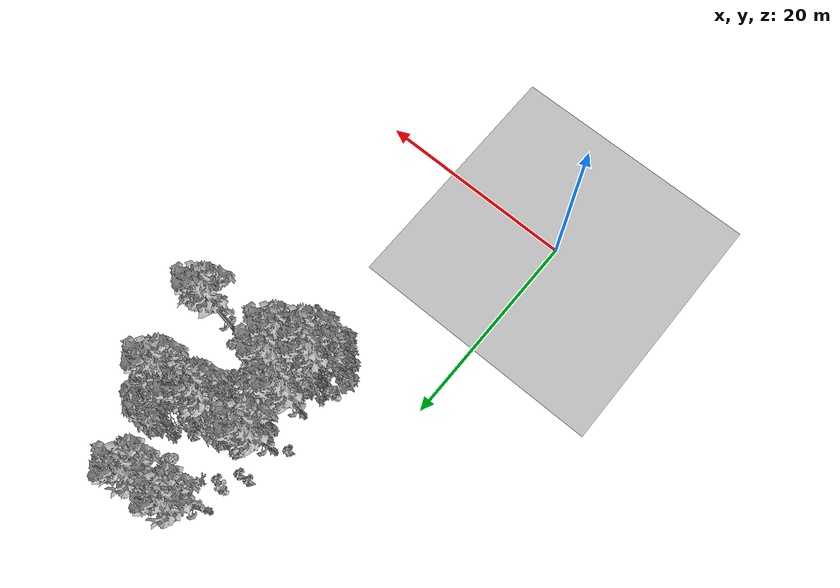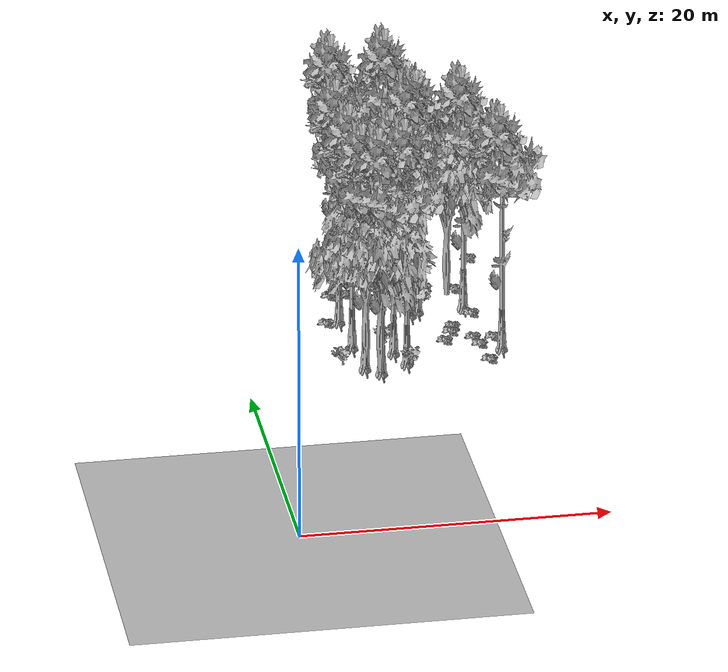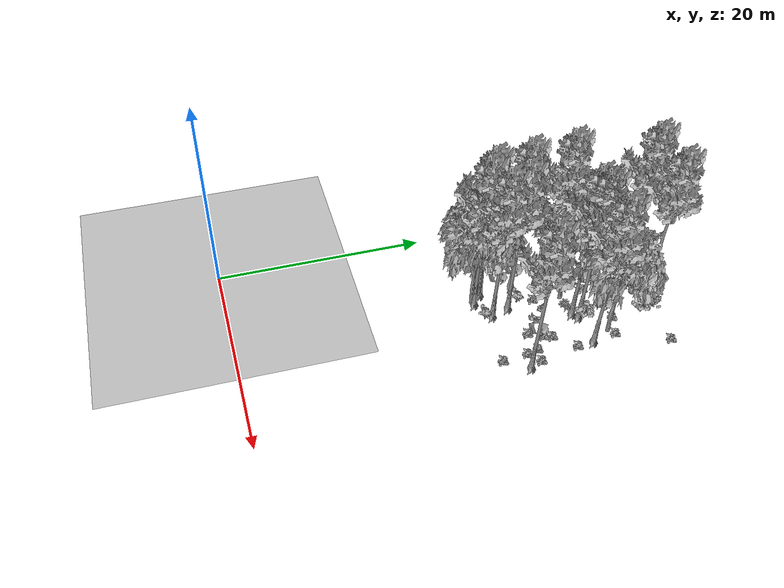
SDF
<sdf version="1.7">
 <world name="default">
  <model name="ground_plane">
   <static>1</static>
   <link name="link">
    <collision name="collision">
     <pose>-50 0 0 0 -0 0</pose>
     <geometry><plane><normal>0 0 1</normal><size>80 80</size></plane></geometry>
     <surface><contact><ode><min_depth>0.01</min_depth><max_vel>0</max_vel></ode></contact></surface>
    </collision>
    <visual name="grass">
     <cast_shadows>0</cast_shadows>
     <geometry>
      <mesh>
       <scale>0.46714285714285714 0.46714285714285714 0.1</scale>
       <uri>file://grass_plane/meshes/grass_plane.dae</uri>
      </mesh>
     </geometry>
    </visual>
   </link>
  </model>
  <model name="Tree 33">
   <static>1</static>
   <pose>15.401108456018747 33.57319850584669 0 1.57079 -0 0</pose>
   <link name="link">
    <collision name="collision">
     <geometry><mesh><scale>3.5 5 3.5</scale><uri>model://tree_2/meshes/tree_2.obj</uri></mesh></geometry>
    </collision>
    <visual name="visual">
     <geometry><mesh><scale>3.5 5 3.5</scale><uri>model://tree_2/meshes/tree_2.obj</uri></mesh></geometry>
    </visual>
   </link>
  </model>
  <model name="Tree 93">
   <static>1</static>
   <pose>12.336655040405326 38.84349957890545 0 1.57079 -0 0</pose>
   <link name="link">
    <collision name="collision">
     <geometry><mesh><scale>3.5 5 3.5</scale><uri>model://tree_9/meshes/tree_9.obj</uri></mesh></geometry>
    </collision>
    <visual name="visual">
     <geometry><mesh><scale>3.5 5 3.5</scale><uri>model://tree_9/meshes/tree_9.obj</uri></mesh></geometry>
    </visual>
   </link>
  </model>
  <model name="Tree 109">
   <static>1</static>
   <pose>12.619514855196059 31.317421147298717 0 1.57079 -0 0</pose>
   <link name="link">
    <collision name="collision">
     <geometry><mesh><scale>3.5 5 3.5</scale><uri>model://tree_9/meshes/tree_9.obj</uri></mesh></geometry>
    </collision>
    <visual name="visual">
     <geometry><mesh><scale>3.5 5 3.5</scale><uri>model://tree_9/meshes/tree_9.obj</uri></mesh></geometry>
    </visual>
   </link>
  </model>
  <model name="Tree 112">
   <static>1</static>
   <pose>8.592952753554712 38.517218371462405 0 1.57079 -0 0</pose>
   <link name="link">
    <collision name="collision">
     <geometry><mesh><scale>3.5 5 3.5</scale><uri>model://tree_9/meshes/tree_9.obj</uri></mesh></geometry>
    </collision>
    <visual name="visual">
     <geometry><mesh><scale>3.5 5 3.5</scale><uri>model://tree_9/meshes/tree_9.obj</uri></mesh></geometry>
    </visual>
   </link>
  </model>
  <model name="Tree 122">
   <static>1</static>
   <pose>8.21562229985566 23.649697541144135 0 1.57079 -0 0</pose>
   <link name="link">
    <collision name="collision">
     <geometry><mesh><scale>3.5 5 3.5</scale><uri>model://tree_2/meshes/tree_2.obj</uri></mesh></geometry>
    </collision>
    <visual name="visual">
     <geometry><mesh><scale>3.5 5 3.5</scale><uri>model://tree_2/meshes/tree_2.obj</uri></mesh></geometry>
    </visual>
   </link>
  </model>
  <model name="Tree 153">
   <static>1</static>
   <pose>7.913516245177817 27.03640355824217 0 1.57079 -0 0</pose>
   <link name="link">
    <collision name="collision">
     <geometry><mesh><scale>3.5 5 3.5</scale><uri>model://tree_9/meshes/tree_9.obj</uri></mesh></geometry>
    </collision>
    <visual name="visual">
     <geometry><mesh><scale>3.5 5 3.5</scale><uri>model://tree_9/meshes/tree_9.obj</uri></mesh></geometry>
    </visual>
   </link>
  </model>
  <model name="Tree 160">
   <static>1</static>
   <pose>8.229672501548713 23.743751965756196 0 1.57079 -0 0</pose>
   <link name="link">
    <collision name="collision">
     <geometry><mesh><scale>3.5 5 3.5</scale><uri>model://tree_9/meshes/tree_9.obj</uri></mesh></geometry>
    </collision>
    <visual name="visual">
     <geometry><mesh><scale>3.5 5 3.5</scale><uri>model://tree_9/meshes/tree_9.obj</uri></mesh></geometry>
    </visual>
   </link>
  </model>
  <model name="Tree 188">
   <static>1</static>
   <pose>9.19671573210696 22.879345841000017 0 1.57079 -0 0</pose>
   <link name="link">
    <collision name="collision">
     <geometry><mesh><scale>3.5 5 3.5</scale><uri>model://tree_9/meshes/tree_9.obj</uri></mesh></geometry>
    </collision>
    <visual name="visual">
     <geometry><mesh><scale>3.5 5 3.5</scale><uri>model://tree_9/meshes/tree_9.obj</uri></mesh></geometry>
    </visual>
   </link>
  </model>
  <model name="Tree 191">
   <static>1</static>
   <pose>13.169127109072804 31.75562385294198 0 1.57079 -0 0</pose>
   <link name="link">
    <collision name="collision">
     <geometry><mesh><scale>3.5 5 3.5</scale><uri>model://tree_9/meshes/tree_9.obj</uri></mesh></geometry>
    </collision>
    <visual name="visual">
     <geometry><mesh><scale>3.5 5 3.5</scale><uri>model://tree_9/meshes/tree_9.obj</uri></mesh></geometry>
    </visual>
   </link>
  </model>
  <model name="Tree 273">
   <static>1</static>
   <pose>16.303444566797175 31.877068542320444 0 1.57079 -0 0</pose>
   <link name="link">
    <collision name="collision">
     <geometry><mesh><scale>3.5 5 3.5</scale><uri>model://tree_9/meshes/tree_9.obj</uri></mesh></geometry>
    </collision>
    <visual name="visual">
     <geometry><mesh><scale>3.5 5 3.5</scale><uri>model://tree_9/meshes/tree_9.obj</uri></mesh></geometry>
    </visual>
   </link>
  </model>
  <model name="Tree 311">
   <static>1</static>
   <pose>11.082406482044163 24.023537155399808 0 1.57079 -0 0</pose>
   <link name="link">
    <collision name="collision">
     <geometry><mesh><scale>3.5 5 3.5</scale><uri>model://tree_9/meshes/tree_9.obj</uri></mesh></geometry>
    </collision>
    <visual name="visual">
     <geometry><mesh><scale>3.5 5 3.5</scale><uri>model://tree_9/meshes/tree_9.obj</uri></mesh></geometry>
    </visual>
   </link>
  </model>
  <model name="Tree 364">
   <static>1</static>
   <pose>10.493133607995219 25.760082615923054 0 1.57079 -0 0</pose>
   <link name="link">
    <collision name="collision">
     <geometry><mesh><scale>3.5 5 3.5</scale><uri>model://tree_9/meshes/tree_9.obj</uri></mesh></geometry>
    </collision>
    <visual name="visual">
     <geometry><mesh><scale>3.5 5 3.5</scale><uri>model://tree_9/meshes/tree_9.obj</uri></mesh></geometry>
    </visual>
   </link>
  </model>
  <model name="Tree 398">
   <static>1</static>
   <pose>9.00111854460561 22.625104764252306 0 1.57079 -0 0</pose>
   <link name="link">
    <collision name="collision">
     <geometry><mesh><scale>3.5 5 3.5</scale><uri>model://tree_2/meshes/tree_2.obj</uri></mesh></geometry>
    </collision>
    <visual name="visual">
     <geometry><mesh><scale>3.5 5 3.5</scale><uri>model://tree_2/meshes/tree_2.obj</uri></mesh></geometry>
    </visual>
   </link>
  </model>
  <model name="Tree 407">
   <static>1</static>
   <pose>7.713448466924511 31.091820525890284 0 1.57079 -0 0</pose>
   <link name="link">
    <collision name="collision">
     <geometry><mesh><scale>3.5 5 3.5</scale><uri>model://tree_9/meshes/tree_9.obj</uri></mesh></geometry>
    </collision>
    <visual name="visual">
     <geometry><mesh><scale>3.5 5 3.5</scale><uri>model://tree_9/meshes/tree_9.obj</uri></mesh></geometry>
    </visual>
   </link>
  </model>
  <model name="Tree 517">
   <static>1</static>
   <pose>17.698250649053477 25.274732946321762 0 1.57079 -0 0</pose>
   <link name="link">
    <collision name="collision">
     <geometry><mesh><scale>3.5 5 3.5</scale><uri>model://tree_9/meshes/tree_9.obj</uri></mesh></geometry>
    </collision>
    <visual name="visual">
     <geometry><mesh><scale>3.5 5 3.5</scale><uri>model://tree_9/meshes/tree_9.obj</uri></mesh></geometry>
    </visual>
   </link>
  </model>
  <model name="Tree 529">
   <static>1</static>
   <pose>10.519828095997923 30.924006442572306 0 1.57079 -0 0</pose>
   <link name="link">
    <collision name="collision">
     <geometry><mesh><scale>3.5 5 3.5</scale><uri>model://tree_2/meshes/tree_2.obj</uri></mesh></geometry>
    </collision>
    <visual name="visual">
     <geometry><mesh><scale>3.5 5 3.5</scale><uri>model://tree_2/meshes/tree_2.obj</uri></mesh></geometry>
    </visual>
   </link>
  </model>
  <model name="Bush 3">
   <static>1</static>
   <pose>16.249632957107032 25.42596182473386 0 1.57079 -0 0</pose>
   <link name="link">
    <collision name="collision">
     <geometry><mesh><scale>2 2 2</scale><uri>model://bush_2/meshes/bush_2.obj</uri></mesh></geometry>
     <surface><contact><collide_without_contact>false</collide_without_contact></contact></surface>
    </collision>
    <visual name="visual">
     <geometry><mesh><scale>2 2 2</scale><uri>model://bush_2/meshes/bush_2.obj</uri></mesh></geometry>
    </visual>
   </link>
  </model>
  <model name="Bush 34">
   <static>1</static>
   <pose>10.201879607091279 39.424126787518816 0 1.57079 -0 0</pose>
   <link name="link">
    <collision name="collision">
     <geometry><mesh><scale>2 2 2</scale><uri>model://bush_2/meshes/bush_2.obj</uri></mesh></geometry>
     <surface><contact><collide_without_contact>false</collide_without_contact></contact></surface>
    </collision>
    <visual name="visual">
     <geometry><mesh><scale>2 2 2</scale><uri>model://bush_2/meshes/bush_2.obj</uri></mesh></geometry>
    </visual>
   </link>
  </model>
  <model name="Bush 59">
   <static>1</static>
   <pose>15.989112713481553 34.099665364391996 0 1.57079 -0 0</pose>
   <link name="link">
    <collision name="collision">
     <geometry><mesh><scale>2 2 2</scale><uri>model://bush_2/meshes/bush_2.obj</uri></mesh></geometry>
     <surface><contact><collide_without_contact>false</collide_without_contact></contact></surface>
    </collision>
    <visual name="visual">
     <geometry><mesh><scale>2 2 2</scale><uri>model://bush_2/meshes/bush_2.obj</uri></mesh></geometry>
    </visual>
   </link>
  </model>
  <model name="Bush 90">
   <static>1</static>
   <pose>6.669853257139991 30.215779195528654 0 1.57079 -0 0</pose>
   <link name="link">
    <collision name="collision">
     <geometry><mesh><scale>2 2 2</scale><uri>model://bush_2/meshes/bush_2.obj</uri></mesh></geometry>
     <surface><contact><collide_without_contact>false</collide_without_contact></contact></surface>
    </collision>
    <visual name="visual">
     <geometry><mesh><scale>2 2 2</scale><uri>model://bush_2/meshes/bush_2.obj</uri></mesh></geometry>
    </visual>
   </link>
  </model>
  <model name="Bush 132">
   <static>1</static>
   <pose>13.7281347563978 38.9901357946936 0 1.57079 -0 0</pose>
   <link name="link">
    <collision name="collision">
     <geometry><mesh><scale>2 2 2</scale><uri>model://bush_4/meshes/bush_4.obj</uri></mesh></geometry>
     <surface><contact><collide_without_contact>false</collide_without_contact></contact></surface>
    </collision>
    <visual name="visual">
     <geometry><mesh><scale>2 2 2</scale><uri>model://bush_4/meshes/bush_4.obj</uri></mesh></geometry>
    </visual>
   </link>
  </model>
  <model name="Bush 149">
   <static>1</static>
   <pose>13.923100396724493 37.49488139479992 0 1.57079 -0 0</pose>
   <link name="link">
    <collision name="collision">
     <geometry><mesh><scale>2 2 2</scale><uri>model://bush_1/meshes/bush_1.obj</uri></mesh></geometry>
     <surface><contact><collide_without_contact>false</collide_without_contact></contact></surface>
    </collision>
    <visual name="visual">
     <geometry><mesh><scale>2 2 2</scale><uri>model://bush_1/meshes/bush_1.obj</uri></mesh></geometry>
    </visual>
   </link>
  </model>
  <model name="Bush 166">
   <static>1</static>
   <pose>12.446395963119919 30.705193880653127 0 1.57079 -0 0</pose>
   <link name="link">
    <collision name="collision">
     <geometry><mesh><scale>2 2 2</scale><uri>model://bush_5/meshes/bush_5.obj</uri></mesh></geometry>
     <surface><contact><collide_without_contact>false</collide_without_contact></contact></surface>
    </collision>
    <visual name="visual">
     <geometry><mesh><scale>2 2 2</scale><uri>model://bush_5/meshes/bush_5.obj</uri></mesh></geometry>
    </visual>
   </link>
  </model>
  <model name="Bush 172">
   <static>1</static>
   <pose>6.778485023706288 23.98927922673616 0 1.57079 -0 0</pose>
   <link name="link">
    <collision name="collision">
     <geometry><mesh><scale>2 2 2</scale><uri>model://bush_0/meshes/bush_0.obj</uri></mesh></geometry>
     <surface><contact><collide_without_contact>false</collide_without_contact></contact></surface>
    </collision>
    <visual name="visual">
     <geometry><mesh><scale>2 2 2</scale><uri>model://bush_0/meshes/bush_0.obj</uri></mesh></geometry>
    </visual>
   </link>
  </model>
  <model name="Bush 243">
   <static>1</static>
   <pose>10.143733107484614 33.44354920803602 0 1.57079 -0 0</pose>
   <link name="link">
    <collision name="collision">
     <geometry><mesh><scale>2 2 2</scale><uri>model://bush_2/meshes/bush_2.obj</uri></mesh></geometry>
     <surface><contact><collide_without_contact>false</collide_without_contact></contact></surface>
    </collision>
    <visual name="visual">
     <geometry><mesh><scale>2 2 2</scale><uri>model://bush_2/meshes/bush_2.obj</uri></mesh></geometry>
    </visual>
   </link>
  </model>
  <model name="Bush 261">
   <static>1</static>
   <pose>16.537888745394923 30.190059494899316 0 1.57079 -0 0</pose>
   <link name="link">
    <collision name="collision">
     <geometry><mesh><scale>2 2 2</scale><uri>model://bush_2/meshes/bush_2.obj</uri></mesh></geometry>
     <surface><contact><collide_without_contact>false</collide_without_contact></contact></surface>
    </collision>
    <visual name="visual">
     <geometry><mesh><scale>2 2 2</scale><uri>model://bush_2/meshes/bush_2.obj</uri></mesh></geometry>
    </visual>
   </link>
  </model>
  <model name="Bush 266">
   <static>1</static>
   <pose>11.789353700145973 37.7337492899417 0 1.57079 -0 0</pose>
   <link name="link">
    <collision name="collision">
     <geometry><mesh><scale>2 2 2</scale><uri>model://bush_4/meshes/bush_4.obj</uri></mesh></geometry>
     <surface><contact><collide_without_contact>false</collide_without_contact></contact></surface>
    </collision>
    <visual name="visual">
     <geometry><mesh><scale>2 2 2</scale><uri>model://bush_4/meshes/bush_4.obj</uri></mesh></geometry>
    </visual>
   </link>
  </model>
  <model name="Bush 279">
   <static>1</static>
   <pose>10.61329698757229 37.1129001181541 0 1.57079 -0 0</pose>
   <link name="link">
    <collision name="collision">
     <geometry><mesh><scale>2 2 2</scale><uri>model://bush_5/meshes/bush_5.obj</uri></mesh></geometry>
     <surface><contact><collide_without_contact>false</collide_without_contact></contact></surface>
    </collision>
    <visual name="visual">
     <geometry><mesh><scale>2 2 2</scale><uri>model://bush_5/meshes/bush_5.obj</uri></mesh></geometry>
    </visual>
   </link>
  </model>
  <model name="Bush 280">
   <static>1</static>
   <pose>9.752483533402888 36.08796408233158 0 1.57079 -0 0</pose>
   <link name="link">
    <collision name="collision">
     <geometry><mesh><scale>2 2 2</scale><uri>model://bush_2/meshes/bush_2.obj</uri></mesh></geometry>
     <surface><contact><collide_without_contact>false</collide_without_contact></contact></surface>
    </collision>
    <visual name="visual">
     <geometry><mesh><scale>2 2 2</scale><uri>model://bush_2/meshes/bush_2.obj</uri></mesh></geometry>
    </visual>
   </link>
  </model>
  <model name="Bush 281">
   <static>1</static>
   <pose>14.928388312196532 28.3846783005434 0 1.57079 -0 0</pose>
   <link name="link">
    <collision name="collision">
     <geometry><mesh><scale>2 2 2</scale><uri>model://bush_2/meshes/bush_2.obj</uri></mesh></geometry>
     <surface><contact><collide_without_contact>false</collide_without_contact></contact></surface>
    </collision>
    <visual name="visual">
     <geometry><mesh><scale>2 2 2</scale><uri>model://bush_2/meshes/bush_2.obj</uri></mesh></geometry>
    </visual>
   </link>
  </model>
  <model name="Bush 289">
   <static>1</static>
   <pose>17.887382745934985 38.73821318451053 0 1.57079 -0 0</pose>
   <link name="link">
    <collision name="collision">
     <geometry><mesh><scale>2 2 2</scale><uri>model://bush_2/meshes/bush_2.obj</uri></mesh></geometry>
     <surface><contact><collide_without_contact>false</collide_without_contact></contact></surface>
    </collision>
    <visual name="visual">
     <geometry><mesh><scale>2 2 2</scale><uri>model://bush_2/meshes/bush_2.obj</uri></mesh></geometry>
    </visual>
   </link>
  </model>
  <model name="Bush 295">
   <static>1</static>
   <pose>10.23390861089208 28.30064968666251 0 1.57079 -0 0</pose>
   <link name="link">
    <collision name="collision">
     <geometry><mesh><scale>2 2 2</scale><uri>model://bush_2/meshes/bush_2.obj</uri></mesh></geometry>
     <surface><contact><collide_without_contact>false</collide_without_contact></contact></surface>
    </collision>
    <visual name="visual">
     <geometry><mesh><scale>2 2 2</scale><uri>model://bush_2/meshes/bush_2.obj</uri></mesh></geometry>
    </visual>
   </link>
  </model>
  <model name="Bush 323">
   <static>1</static>
   <pose>8.777011569985447 36.33448676871437 0 1.57079 -0 0</pose>
   <link name="link">
    <collision name="collision">
     <geometry><mesh><scale>2 2 2</scale><uri>model://bush_0/meshes/bush_0.obj</uri></mesh></geometry>
     <surface><contact><collide_without_contact>false</collide_without_contact></contact></surface>
    </collision>
    <visual name="visual">
     <geometry><mesh><scale>2 2 2</scale><uri>model://bush_0/meshes/bush_0.obj</uri></mesh></geometry>
    </visual>
   </link>
  </model>
  <model name="Bush 329">
   <static>1</static>
   <pose>10.574262101273142 38.86948090841125 0 1.57079 -0 0</pose>
   <link name="link">
    <collision name="collision">
     <geometry><mesh><scale>2 2 2</scale><uri>model://bush_2/meshes/bush_2.obj</uri></mesh></geometry>
     <surface><contact><collide_without_contact>false</collide_without_contact></contact></surface>
    </collision>
    <visual name="visual">
     <geometry><mesh><scale>2 2 2</scale><uri>model://bush_2/meshes/bush_2.obj</uri></mesh></geometry>
    </visual>
   </link>
  </model>
  <model name="Bush 337">
   <static>1</static>
   <pose>15.98358105714793 26.520371990128538 0 1.57079 -0 0</pose>
   <link name="link">
    <collision name="collision">
     <geometry><mesh><scale>2 2 2</scale><uri>model://bush_2/meshes/bush_2.obj</uri></mesh></geometry>
     <surface><contact><collide_without_contact>false</collide_without_contact></contact></surface>
    </collision>
    <visual name="visual">
     <geometry><mesh><scale>2 2 2</scale><uri>model://bush_2/meshes/bush_2.obj</uri></mesh></geometry>
    </visual>
   </link>
  </model>
  <model name="Bush 346">
   <static>1</static>
   <pose>16.475847650067145 23.03125590834155 0 1.57079 -0 0</pose>
   <link name="link">
    <collision name="collision">
     <geometry><mesh><scale>2 2 2</scale><uri>model://bush_2/meshes/bush_2.obj</uri></mesh></geometry>
     <surface><contact><collide_without_contact>false</collide_without_contact></contact></surface>
    </collision>
    <visual name="visual">
     <geometry><mesh><scale>2 2 2</scale><uri>model://bush_2/meshes/bush_2.obj</uri></mesh></geometry>
    </visual>
   </link>
  </model>
  <model name="Bush 348">
   <static>1</static>
   <pose>14.668822090570366 27.617924939565384 0 1.57079 -0 0</pose>
   <link name="link">
    <collision name="collision">
     <geometry><mesh><scale>2 2 2</scale><uri>model://bush_2/meshes/bush_2.obj</uri></mesh></geometry>
     <surface><contact><collide_without_contact>false</collide_without_contact></contact></surface>
    </collision>
    <visual name="visual">
     <geometry><mesh><scale>2 2 2</scale><uri>model://bush_2/meshes/bush_2.obj</uri></mesh></geometry>
    </visual>
   </link>
  </model>
  <model name="Bush 354">
   <static>1</static>
   <pose>11.33645647588309 23.176251375283236 0 1.57079 -0 0</pose>
   <link name="link">
    <collision name="collision">
     <geometry><mesh><scale>2 2 2</scale><uri>model://bush_0/meshes/bush_0.obj</uri></mesh></geometry>
     <surface><contact><collide_without_contact>false</collide_without_contact></contact></surface>
    </collision>
    <visual name="visual">
     <geometry><mesh><scale>2 2 2</scale><uri>model://bush_0/meshes/bush_0.obj</uri></mesh></geometry>
    </visual>
   </link>
  </model>
  <model name="Bush 365">
   <static>1</static>
   <pose>14.113347395972127 34.65035522617082 0 1.57079 -0 0</pose>
   <link name="link">
    <collision name="collision">
     <geometry><mesh><scale>2 2 2</scale><uri>model://bush_2/meshes/bush_2.obj</uri></mesh></geometry>
     <surface><contact><collide_without_contact>false</collide_without_contact></contact></surface>
    </collision>
    <visual name="visual">
     <geometry><mesh><scale>2 2 2</scale><uri>model://bush_2/meshes/bush_2.obj</uri></mesh></geometry>
    </visual>
   </link>
  </model>
  <model name="Bush 399">
   <static>1</static>
   <pose>8.587067009203622 34.47310642003063 0 1.57079 -0 0</pose>
   <link name="link">
    <collision name="collision">
     <geometry><mesh><scale>2 2 2</scale><uri>model://bush_2/meshes/bush_2.obj</uri></mesh></geometry>
     <surface><contact><collide_without_contact>false</collide_without_contact></contact></surface>
    </collision>
    <visual name="visual">
     <geometry><mesh><scale>2 2 2</scale><uri>model://bush_2/meshes/bush_2.obj</uri></mesh></geometry>
    </visual>
   </link>
  </model>
  <model name="Bush 407">
   <static>1</static>
   <pose>7.580103728001532 34.36791881891985 0 1.57079 -0 0</pose>
   <link name="link">
    <collision name="collision">
     <geometry><mesh><scale>2 2 2</scale><uri>model://bush_2/meshes/bush_2.obj</uri></mesh></geometry>
     <surface><contact><collide_without_contact>false</collide_without_contact></contact></surface>
    </collision>
    <visual name="visual">
     <geometry><mesh><scale>2 2 2</scale><uri>model://bush_2/meshes/bush_2.obj</uri></mesh></geometry>
    </visual>
   </link>
  </model>
  <model name="Bush 493">
   <static>1</static>
   <pose>10.106908227268946 26.770572284123546 0 1.57079 -0 0</pose>
   <link name="link">
    <collision name="collision">
     <geometry><mesh><scale>2 2 2</scale><uri>model://bush_0/meshes/bush_0.obj</uri></mesh></geometry>
     <surface><contact><collide_without_contact>false</collide_without_contact></contact></surface>
    </collision>
    <visual name="visual">
     <geometry><mesh><scale>2 2 2</scale><uri>model://bush_0/meshes/bush_0.obj</uri></mesh></geometry>
    </visual>
   </link>
  </model>
  <model name="Bush 537">
   <static>1</static>
   <pose>13.348711842803617 32.074734597536136 0 1.57079 -0 0</pose>
   <link name="link">
    <collision name="collision">
     <geometry><mesh><scale>2 2 2</scale><uri>model://bush_1/meshes/bush_1.obj</uri></mesh></geometry>
     <surface><contact><collide_without_contact>false</collide_without_contact></contact></surface>
    </collision>
    <visual name="visual">
     <geometry><mesh><scale>2 2 2</scale><uri>model://bush_1/meshes/bush_1.obj</uri></mesh></geometry>
    </visual>
   </link>
  </model>
  <model name="Bush 547">
   <static>1</static>
   <pose>14.049468746959349 26.312319568463437 0 1.57079 -0 0</pose>
   <link name="link">
    <collision name="collision">
     <geometry><mesh><scale>2 2 2</scale><uri>model://bush_2/meshes/bush_2.obj</uri></mesh></geometry>
     <surface><contact><collide_without_contact>false</collide_without_contact></contact></surface>
    </collision>
    <visual name="visual">
     <geometry><mesh><scale>2 2 2</scale><uri>model://bush_2/meshes/bush_2.obj</uri></mesh></geometry>
    </visual>
   </link>
  </model>
  <model name="Bush 634">
   <static>1</static>
   <pose>17.30171643703367 26.361787948288992 0 1.57079 -0 0</pose>
   <link name="link">
    <collision name="collision">
     <geometry><mesh><scale>2 2 2</scale><uri>model://bush_2/meshes/bush_2.obj</uri></mesh></geometry>
     <surface><contact><collide_without_contact>false</collide_without_contact></contact></surface>
    </collision>
    <visual name="visual">
     <geometry><mesh><scale>2 2 2</scale><uri>model://bush_2/meshes/bush_2.obj</uri></mesh></geometry>
    </visual>
   </link>
  </model>
 </world>
</sdf>
